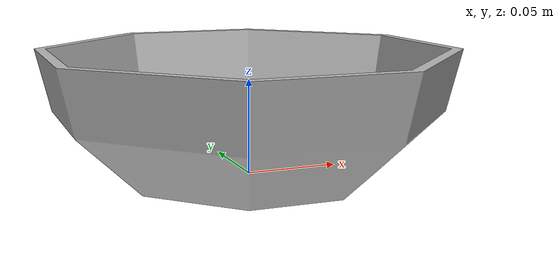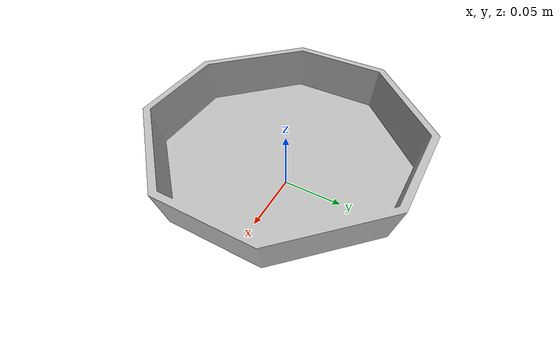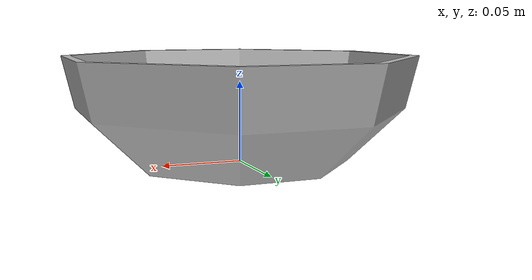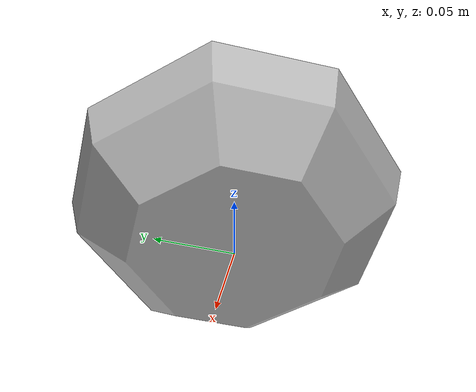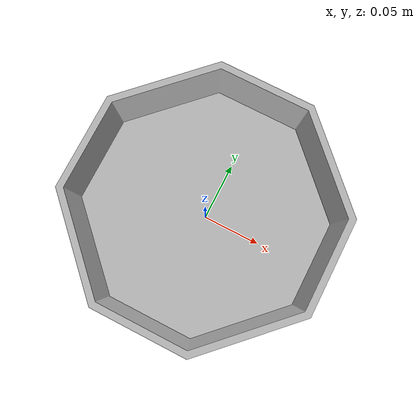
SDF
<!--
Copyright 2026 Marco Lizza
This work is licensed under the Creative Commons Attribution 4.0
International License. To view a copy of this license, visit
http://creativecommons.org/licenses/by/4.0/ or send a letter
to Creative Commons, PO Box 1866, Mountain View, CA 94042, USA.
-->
<?xml version="1.0" ?>
<sdf version="1.6">
  <model name="plate">
    <link name="link_0">
      <inertial>
        <mass>0.4</mass> <inertia>
          <ixx>0.0005</ixx>
          <ixy>0</ixy>
          <ixz>0</ixz>
          <iyy>0.0005</iyy>
          <iyz>0</iyz>
          <izz>0.0005</izz>
        </inertia>
      </inertial>
      <visual name="visual">
        <geometry>
          <mesh>
            <uri>meshes/plate.obj</uri>
          </mesh>
        </geometry>
      </visual>
      <collision name="collision_0">
        <geometry>
          <mesh>
            <uri>meshes/plate.obj</uri>
          </mesh>
        </geometry>
      </collision>
    </link>
  </model>
</sdf>
